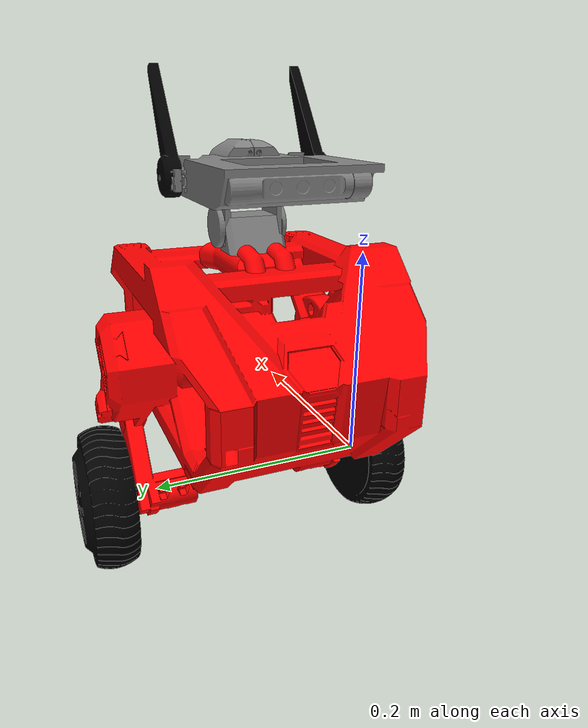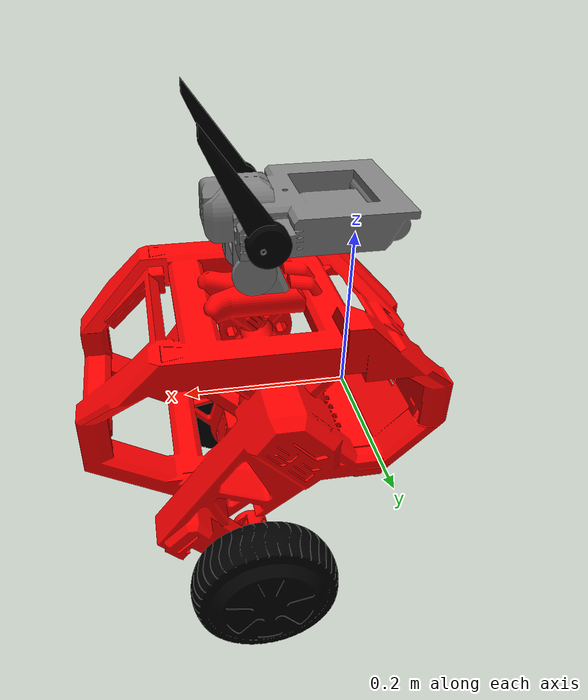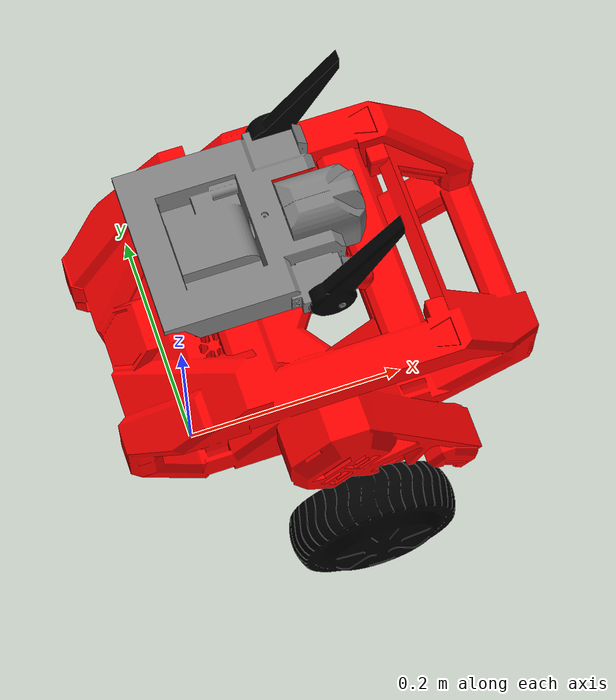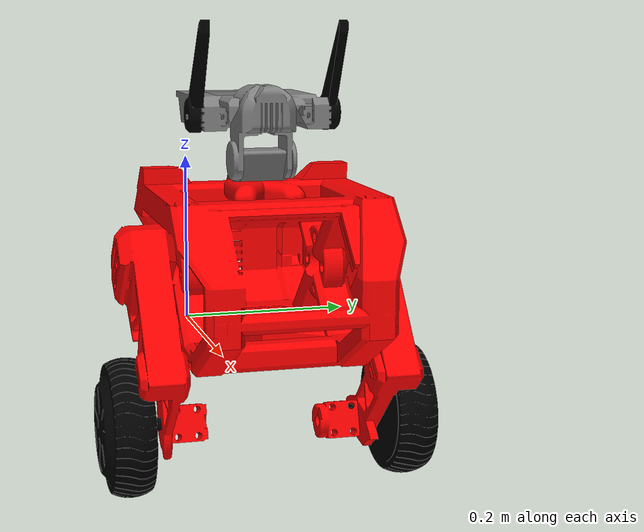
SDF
<?xml version="1.0" ?>
<sdf version="1.7">
  <!-- Define o que é o robô -->
  <model name="wbr">
    <static>false</static> <!-- agora ele cai -->

    <!-- link: base_footprint -->
    <link name="base_footprint"/>

    <!-- link: chassi -->
    <link name="chassi">
      <pose relative_to="base_footprint">0 0 0 0 0 1.5708</pose>
      <inertial>
        <mass>14.7</mass>
        <inertia>
          <ixx>0.698</ixx>
          <iyy>0.593</iyy>
          <izz>0.803</izz>
          <ixy>0.0</ixy>
          <ixz>0.0</ixz>
          <iyz>0.0</iyz>
        </inertia>
      </inertial>

      <collision name="chassi_collision">
      <pose>0.06 -0.125 0.08 0 0 0</pose>
        <geometry>
          <box>
            <size>0.355 0.37 0.18</size>
          </box>
        </geometry>
      </collision>

      <visual name="chassi_visual">
        <pose>0 0 0 1.5708 0 0</pose>
        <geometry>
          <mesh>
            <uri>model://wbr/meshes/Chassi_Tcc_2.stl</uri>
            <scale>0.001 0.001 0.001</scale>
          </mesh>
        </geometry>
        <material>
          <ambient>1 0 0 1</ambient>
          <diffuse>1 0 0 1</diffuse>
          <specular>0.8 0.8 0.8 1</specular>
          <emissive>0 0 0 1</emissive>
        </material>
      </visual>
    </link>

    <!-- link: left_wheel -->
    <link name="left_wheel">
    <pose relative_to="chassi">-0.07 -0.142 -0.092 0 3.1415 0</pose>
      <inertial>
        <mass>5.81</mass>
        <inertia>
          <ixx>0.013</ixx>
          <iyy>0.013</iyy>
          <izz>0.020</izz>
          <ixy>0.0</ixy>
          <ixz>0.0</ixz>
          <iyz>0.0</iyz>
        </inertia>
      </inertial>

      <collision name="left_wheel_collision">
        <pose>0.029500 0.000000 0.000000 0.000000 1.570800 0.000000</pose>
        <geometry>
          <cylinder>
            <radius>0.083</radius>
            <length>0.030</length>
          </cylinder>
        </geometry>
        <surface>
          <friction>
            <ode>
              <mu>1.0</mu>
              <mu2>1.0</mu2>
            </ode>
          </friction>
        </surface>
      </collision>

      <visual name="left_wheel_visual">
        <geometry>
          <mesh>
            <uri>model://wbr/meshes/motor.stl</uri>
            <scale>0.001 0.001 0.001</scale>
          </mesh>
        </geometry>
        <material>
          <ambient>0 0 0 1</ambient>
          <diffuse>0 0 0 1</diffuse>
          <specular>0.1 0.1 0.1 1</specular>
          <emissive>0 0 0 1</emissive>
        </material>
      </visual>
    </link>

    <!-- link: right_wheel -->
    <link name="right_wheel">
    <pose relative_to="chassi">0.2 -0.142 -0.092 0 0 0</pose>
      <inertial>
        <mass>5.81</mass>
        <inertia>
          <ixx>0.013</ixx>
          <iyy>0.013</iyy>
          <izz>0.020</izz>
          <ixy>0.0</ixy>
          <ixz>0.0</ixz>
          <iyz>0.0</iyz>
        </inertia>
      </inertial>

      <collision name="right_wheel_collision">
        <pose>0.029500 0.000000 0.000000 0.000000 1.570800 3.1415</pose>
        <geometry>
          <cylinder>
            <radius>0.083</radius>
            <length>0.030</length>
          </cylinder>
        </geometry>
        <surface>
          <friction>
            <ode>
              <mu>1.0</mu>
              <mu2>1.0</mu2>
            </ode>
          </friction>
        </surface>
      </collision>

      <visual name="right_wheel_visual">
        <geometry>
          <mesh>
            <uri>model://wbr/meshes/motor.stl</uri>
            <scale>0.001 0.001 0.001</scale>
          </mesh>
        </geometry>
        <material>
          <ambient>0 0 0 1</ambient>
          <diffuse>0 0 0 1</diffuse>
          <specular>0.1 0.1 0.1 1</specular>
          <emissive>0 0 0 1</emissive>
        </material>
      </visual>
    </link>

    <!-- link: pescoco -->
    <link name="pescoco">
    <pose relative_to="chassi">0 0 -0.015 1.5708 0 0</pose>

      <visual name="pescoco_visual">
        <geometry>
          <mesh>
            <uri>model://wbr/meshes/Chassi_Tcc_pescoco.stl</uri>
            <scale>0.001 0.001 0.001</scale>
          </mesh>
        </geometry>
        <material>
          <ambient>0.5 0.5 0.5 1</ambient>
          <diffuse>0.5 0.5 0.5 1</diffuse>
        </material>
      </visual>
    </link>

    <!-- link: pescoco2 -->
    <link name="pescoco2">
    <pose relative_to="pescoco">0 0 0 0 0 0</pose>

      <visual name="pescoco2_visual">
        <geometry>
          <mesh>
            <uri>model://wbr/meshes/Chassi_Tcc_pescoco2.stl</uri>
            <scale>0.001 0.001 0.001</scale>
          </mesh>
        </geometry>
        <material>
          <ambient>0.5 0.5 0.5 1</ambient>
          <diffuse>0.5 0.5 0.5 1</diffuse>
        </material>
      </visual>
    </link>

    <!-- link: cabeca -->
    <link name="cabeca">
    <pose relative_to="pescoco2">0 0 0 0 0 0</pose>

      <visual name="cabeca_visual">
        <geometry>
          <mesh>
            <uri>model://wbr/meshes/Chassi_Tcc_cabecc.stl</uri>
            <scale>0.001 0.001 0.001</scale>
          </mesh>
        </geometry>
        <material>
          <ambient>0.5 0.5 0.5 1</ambient>
          <diffuse>0.5 0.5 0.5 1</diffuse>
        </material>
      </visual>
    </link>

    <!-- link: orelha_dir -->
    <link name="orelha_dir">
    <pose relative_to="cabeca">0 0 0 0 0 0</pose>

      <visual name="orelha_dir_visual">
        <geometry>
          <mesh>
            <uri>model://wbr/meshes/Chassi_Tcc_orelha_dir.stl</uri>
            <scale>0.001 0.001 0.001</scale>
          </mesh>
        </geometry>
        <material>
          <ambient>0 0 0 1</ambient>
          <diffuse>0 0 0 1</diffuse>
        </material>
      </visual>
    </link>

    <!-- link: orelha_esq -->
    <link name="orelha_esq">
    <pose relative_to="cabeca">0 0 0 0 0 0</pose>

      <visual name="orelha_esq_visual">
        <geometry>
          <mesh>
            <uri>model://wbr/meshes/Chassi_Tcc_orelha_esq.stl</uri>
            <scale>0.001 0.001 0.001</scale>
          </mesh>
        </geometry>
        <material>
          <ambient>0 0 0 1</ambient>
          <diffuse>0 0 0 1</diffuse>
        </material>
      </visual>
    </link>

    <!-- joint: base_footprint -> chassi -->
    <joint name="joint_base_footprint_to_chassi" type="fixed">
      <parent>base_footprint</parent>
      <child>chassi</child>
    </joint>

    <!-- joint: chassi -> left_wheel -->
    <joint name="chassi_to_left_wheel" type="revolute">
      <parent>chassi</parent>
      <child>left_wheel</child>
      <axis>
        <xyz>1 0 0</xyz>
        <limit>
          <effort>50</effort>
        </limit>
      </axis>
    </joint>

    <!-- joint: chassi -> right_wheel -->
    <joint name="chassi_to_right_wheel" type="revolute">
      <parent>chassi</parent>
      <child>right_wheel</child>
      <axis>
        <xyz>1 0 0</xyz>
        <limit>
          <effort>50</effort>
        </limit>
      </axis>
    </joint>

    <!-- joint: chassi -> pescoco -->
    <joint name="servo_Z" type="revolute">
      <parent>chassi</parent>
      <child>pescoco</child>
      <axis>
        <xyz>0 0 1</xyz> <!-- eixo da junta no link pai -->
        <limit>
          <lower>-1.57</lower>
          <upper>1.57</upper>
          <effort>5</effort>
          <velocity>1</velocity>
        </limit>
      </axis>
    </joint>

    <!-- joint: pescoco -> pescoco2 -->
    <joint name="servo_X" type="revolute">
      <parent>pescoco</parent>
      <child>pescoco2</child>
      <axis>
        <xyz>0 0 1</xyz> <!-- eixo da junta no link pai -->
        <limit>
          <lower>-1.57</lower>
          <upper>1.57</upper>
          <effort>5</effort>
          <velocity>1</velocity>
        </limit>
      </axis>
    </joint>

    <!-- joint: pescoco2 -> cabeca -->
    <joint name="servo_Y" type="revolute">
      <parent>pescoco2</parent>
      <child>cabeca</child>
      <axis>
        <xyz>0 0 1</xyz> <!-- eixo da junta no link pai -->
        <limit>
          <lower>-1.57</lower>
          <upper>1.57</upper>
          <effort>5</effort>
          <velocity>1</velocity>
        </limit>
      </axis>
    </joint>

    <!-- joint: cabeca -> orelha_dir -->
    <joint name="servo_od" type="revolute">
      <parent>cabeca</parent>
      <child>orelha_dir</child>
      <axis>
        <xyz>0 0 1</xyz> <!-- eixo da junta no link pai -->
        <limit>
          <lower>-1.57</lower>
          <upper>1.57</upper>
          <effort>5</effort>
          <velocity>1</velocity>
        </limit>
      </axis>
    </joint>

    <!-- joint: cabeca -> orelha_esq -->
    <joint name="servo_oe" type="revolute">
      <parent>cabeca</parent>
      <child>orelha_esq</child>
      <axis>
        <xyz>0 0 1</xyz> <!-- eixo da junta no link pai -->
        <limit>
          <lower>-1.57</lower>
          <upper>1.57</upper>
          <effort>5</effort>
          <velocity>1</velocity>
        </limit>
      </axis>
    </joint>

    <!-- plugin: diff-drive -->
    <plugin filename="gz-sim-diff-drive-system" name="gz::sim::systems::DiffDrive">

      <!-- wheels -->
      <left_joint>chassi_to_left_wheel</left_joint>
      <right_joint>chassi_to_right_wheel</right_joint>

      <!-- kinematics -->
      <wheel_separation>0.329</wheel_separation>
      <wheel_diameter>0.1660</wheel_diameter>

      <!-- limits -->
      <max_linear_acceleration>0.5</max_linear_acceleration>

      <topic>cmd_vel</topic>

      <odom_topic>odom</odom_topic>
      <frame_id>odom</frame_id>
      <child_frame_id>base_footprint</child_frame_id>
      <odom_publisher_frequency>30</odom_publisher_frequency>

      <tf_topic>/tf</tf_topic> <!-- Short topic name for tf output -->

    </plugin>

    <!-- plugin: joint-state-publisher -->
    <plugin filename="gz-sim-joint-state-publisher-system"
      name="gz::sim::systems::JointStatePublisher">
      <topic>joint_states</topic>
      <joint_name>chassi_to_left_wheel</joint_name>
      <joint_name>chassi_to_right_wheel</joint_name>
    </plugin>

  </model>
</sdf>
